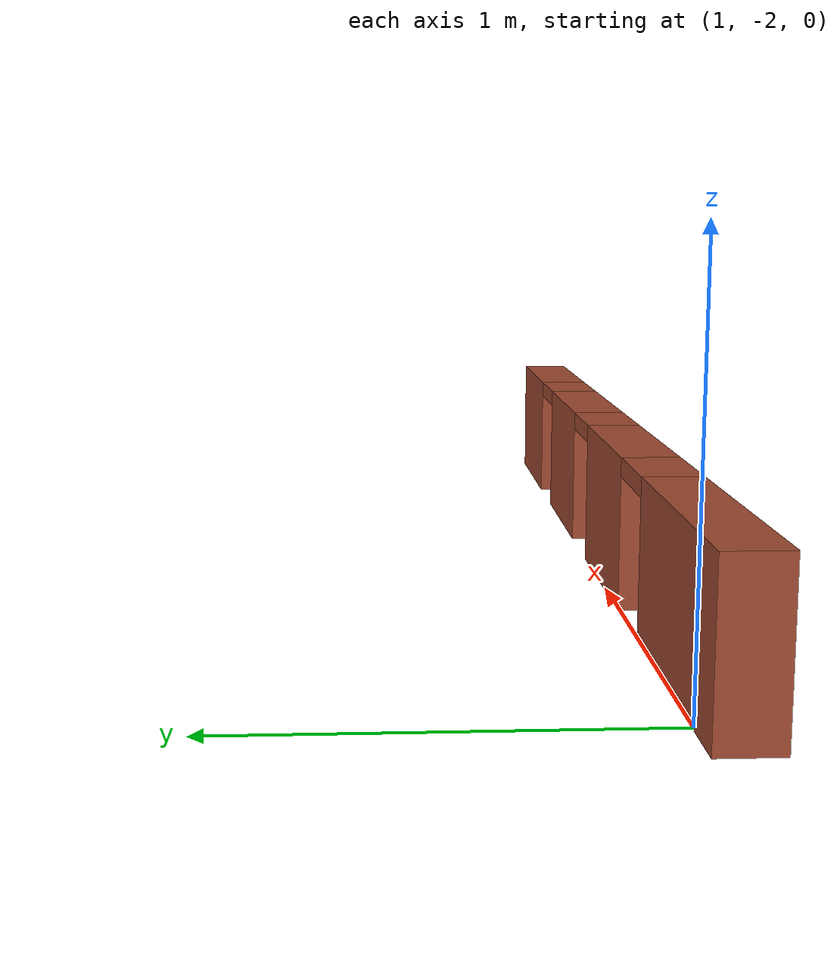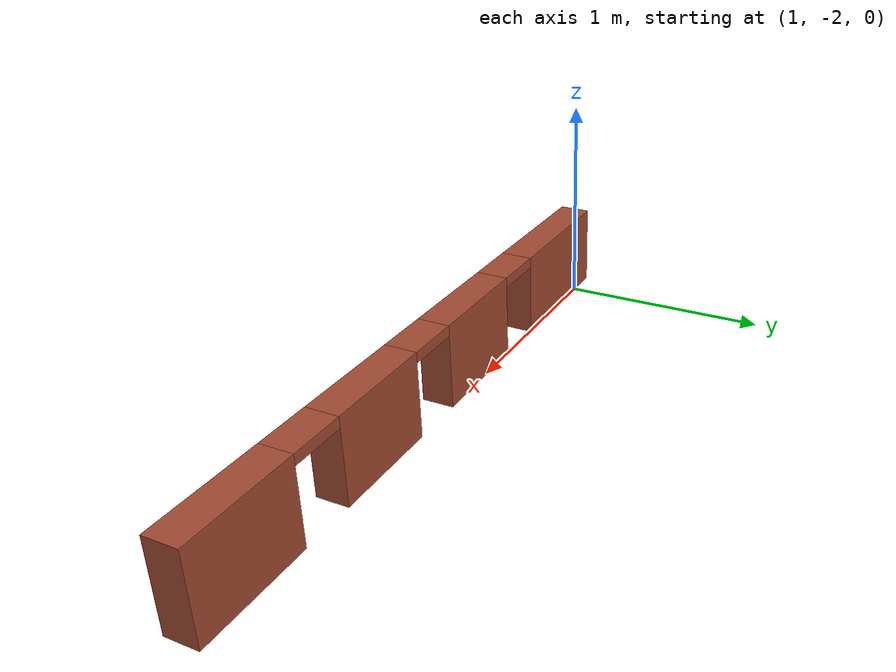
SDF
<?xml version='1.0'?>
<sdf version='1.7'>
  <model name='door'>
    <pose>1.9225 -1.0725 0 0 -0 0</pose>
    <link name='Wall_2'>
      <pose>0.4225 -0.9975 0 0 -0 0</pose>
      <visual name='Wall_2_Visual_0'>
        <pose>-1.15 0 0.2 0 -0 0</pose>
        <geometry>
          <box>
            <size>0.7 0.15 0.4</size>
          </box>
        </geometry>
        <material>
          <script>
            <uri>file://media/materials/scripts/gazebo.material</uri>
            <name>Gazebo/Bricks</name>
          </script>
          <ambient>1 1 1 1</ambient>
        </material>
        <meta>
          <layer>0</layer>
        </meta>
      </visual>
      <collision name='Wall_2_Collision_0'>
        <geometry>
          <box>
            <size>0.7 0.15 0.4</size>
          </box>
        </geometry>
        <pose>-1.15 0 0.2 0 -0 0</pose>
      </collision>
      <visual name='Wall_2_Visual_1'>
        <pose>-0.29 0 0.2 0 -0 0</pose>
        <geometry>
          <box>
            <size>0.52 0.15 0.4</size>
          </box>
        </geometry>
        <material>
          <script>
            <uri>file://media/materials/scripts/gazebo.material</uri>
            <name>Gazebo/Bricks</name>
          </script>
          <ambient>1 1 1 1</ambient>
        </material>
        <meta>
          <layer>0</layer>
        </meta>
      </visual>
      <collision name='Wall_2_Collision_1'>
        <geometry>
          <box>
            <size>0.52 0.15 0.4</size>
          </box>
        </geometry>
        <pose>-0.29 0 0.2 0 -0 0</pose>
      </collision>
      <visual name='Wall_2_Visual_2'>
        <pose>0.475 0 0.2 0 -0 0</pose>
        <geometry>
          <box>
            <size>0.51 0.15 0.4</size>
          </box>
        </geometry>
        <material>
          <script>
            <uri>file://media/materials/scripts/gazebo.material</uri>
            <name>Gazebo/Bricks</name>
          </script>
          <ambient>1 1 1 1</ambient>
        </material>
        <meta>
          <layer>0</layer>
        </meta>
      </visual>
      <collision name='Wall_2_Collision_2'>
        <geometry>
          <box>
            <size>0.51 0.15 0.4</size>
          </box>
        </geometry>
        <pose>0.475 0 0.2 0 -0 0</pose>
      </collision>
      <visual name='Wall_2_Visual_3'>
        <pose>1.24 0 0.2 0 -0 0</pose>
        <geometry>
          <box>
            <size>0.52 0.15 0.4</size>
          </box>
        </geometry>
        <material>
          <script>
            <uri>file://media/materials/scripts/gazebo.material</uri>
            <name>Gazebo/Bricks</name>
          </script>
          <ambient>1 1 1 1</ambient>
        </material>
        <meta>
          <layer>0</layer>
        </meta>
      </visual>
      <collision name='Wall_2_Collision_3'>
        <geometry>
          <box>
            <size>0.52 0.15 0.4</size>
          </box>
        </geometry>
        <pose>1.24 0 0.2 0 -0 0</pose>
      </collision>
      <visual name='Wall_2_Visual_4'>
        <pose>-0.675 0 0.375 0 -0 0</pose>
        <geometry>
          <box>
            <size>0.25 0.15 0.05</size>
          </box>
        </geometry>
        <material>
          <script>
            <uri>file://media/materials/scripts/gazebo.material</uri>
            <name>Gazebo/Bricks</name>
          </script>
          <ambient>1 1 1 1</ambient>
        </material>
        <meta>
          <layer>0</layer>
        </meta>
      </visual>
      <collision name='Wall_2_Collision_4'>
        <geometry>
          <box>
            <size>0.25 0.15 0.05</size>
          </box>
        </geometry>
        <pose>-0.675 0 0.375 0 -0 0</pose>
      </collision>
      <visual name='Wall_2_Visual_5'>
        <pose>0.095 0 0.375 0 -0 0</pose>
        <geometry>
          <box>
            <size>0.25 0.15 0.05</size>
          </box>
        </geometry>
        <material>
          <script>
            <uri>file://media/materials/scripts/gazebo.material</uri>
            <name>Gazebo/Bricks</name>
          </script>
          <ambient>1 1 1 1</ambient>
        </material>
        <meta>
          <layer>0</layer>
        </meta>
      </visual>
      <collision name='Wall_2_Collision_5'>
        <geometry>
          <box>
            <size>0.25 0.15 0.05</size>
          </box>
        </geometry>
        <pose>0.095 0 0.375 0 -0 0</pose>
      </collision>
      <visual name='Wall_2_Visual_6'>
        <pose>0.855 0 0.375 0 -0 0</pose>
        <geometry>
          <box>
            <size>0.25 0.15 0.05</size>
          </box>
        </geometry>
        <material>
          <script>
            <uri>file://media/materials/scripts/gazebo.material</uri>
            <name>Gazebo/Bricks</name>
          </script>
          <ambient>1 1 1 1</ambient>
        </material>
        <meta>
          <layer>0</layer>
        </meta>
      </visual>
      <collision name='Wall_2_Collision_6'>
        <geometry>
          <box>
            <size>0.25 0.15 0.05</size>
          </box>
        </geometry>
        <pose>0.855 0 0.375 0 -0 0</pose>
      </collision>
    </link>
    <static>1</static>
  </model>
</sdf>
